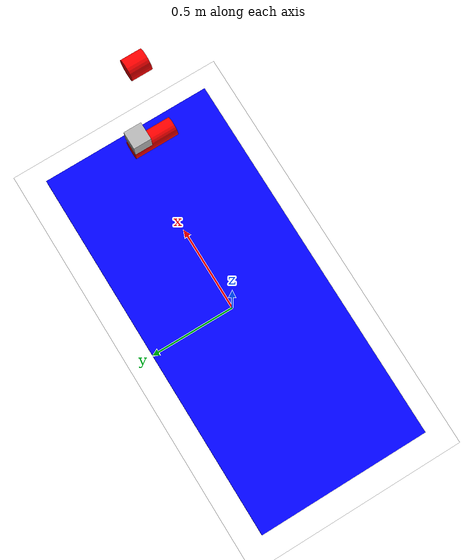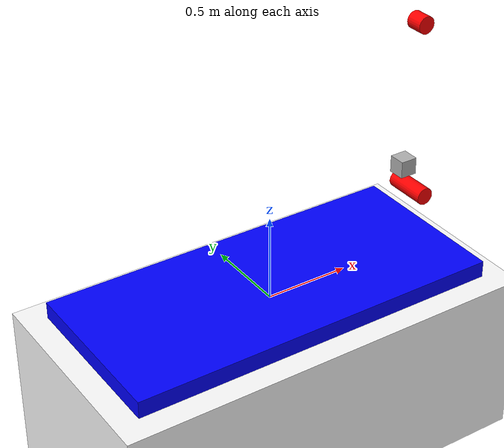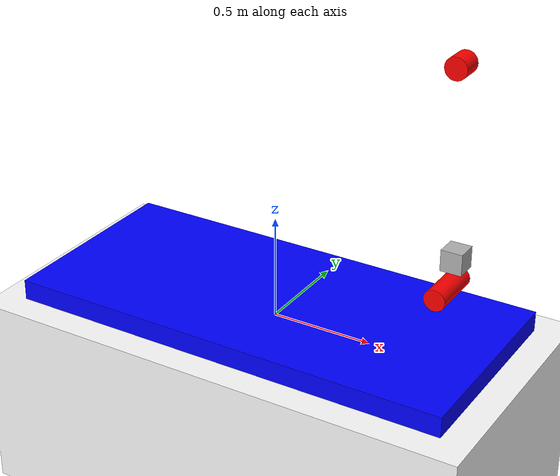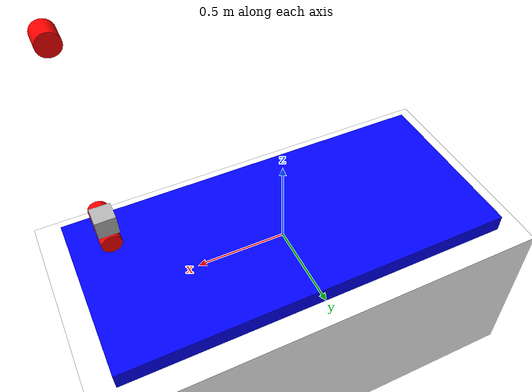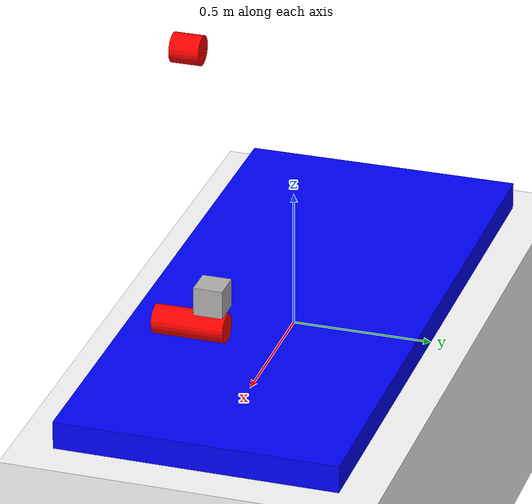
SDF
<?xml version="1.0" ?>
<sdf version="1.6">
  <world name="default">
    <physics name="fast" type="ignored">
      <real_time_factor>0</real_time_factor>
    </physics>

    <model name="ground_plane">
      <static>true</static>
      <link name="link">
        <pose>0 0 -0.5 0 0 0</pose>
        <collision name="collision">
          <geometry>
            <box>
              <size>100 100 1</size>
            </box>
          </geometry>
          <surface>
            <friction>
              <ode>
                <mu>100</mu>
                <mu2>50</mu2>
              </ode>
            </friction>
          </surface>
        </collision>
        <visual name="visual">
          <cast_shadows>false</cast_shadows>
          <geometry>
            <box>
              <size>100 100 1</size>
            </box>
          </geometry>
          <material>
            <ambient>1 1 1 1</ambient>
            <diffuse>1 1 1 1</diffuse>
            <specular>1 1 1 1</specular>
          </material>
        </visual>
      </link>
    </model>
    <model name="universal_model">
        <!-- A Heavy base keeps the joints from falling over -->
        <link name="heavy_base">
            <!-- position the base such that the bottom touches the floor -->
            <pose>0 0 0.05 0 0 0</pose>
            <inertial>
                <mass>100</mass> <!-- kg -->
                <inertia>
                    <!-- (mass / 12) * (y*y + z*z) -->
                    <ixx>8.4167</ixx>
                    <ixy>0</ixy>
                    <ixz>0</ixz>
                    <!-- (mass / 12) * (x*x + z*z) -->
                    <iyy>40.417</iyy>
                    <iyz>0</iyz>
                    <!-- (mass / 12) * (y*y + x*x) -->
                    <izz>48.667</izz>
                </inertia>
            </inertial>
            <!-- Same geometry as visual -->
            <collision name="heavy_base_collision">
                <geometry>
                    <box>
                        <size>2.2 1 0.1</size>
                    </box>
                </geometry>
            </collision>
            <!-- Same geometry as collision -->
            <visual name="heavy_base_visual">
                <geometry>
                    <box>
                        <size>2.2 1 0.1</size>
                    </box>
                </geometry>
                <material>
                  <ambient>0 0 1 1</ambient>
                  <diffuse>0 0 1 1</diffuse>
                  <specular>0 0 1 1</specular>
                </material>
            </visual>
        </link>

        <link name="universal_base">
            <!-- make the base float in the sky -->
            <pose >0.9 0 0.55 0 0 0</pose>
            <inertial>
                <inertia>
                    <!-- (mass / 12) * (y*y + z*z) -->
                    <ixx>0.0016667</ixx>
                    <ixy>0</ixy>
                    <ixz>0</ixz>
                    <!-- (mass / 12) * (x*x + z*z) -->
                    <iyy>0.0016667</iyy>
                    <iyz>0</iyz>
                    <!-- (mass / 12) * (y*y + x*x) -->
                    <izz>0.0016667</izz>
                </inertia>
            </inertial>
            <!-- Same geometry as visual -->
            <collision name="universal_base_collision">
                <geometry>
                    <box>
                        <size>0.1 0.1 0.1</size>
                    </box>
                </geometry>
            </collision>
            <!-- Same geometry as collision -->
            <visual name="universal_base_visual">
                <geometry>
                    <box>
                        <size>0.1 0.1 0.1</size>
                    </box>
                </geometry>
                <material>
                  <ambient>0.7 0.7 0.7 1</ambient>
                  <diffuse>0.7 0.7 0.7 1</diffuse>
                  <specular>0.7 0.7 0.7 1</specular>
                </material>
            </visual>
        </link>

        <joint name="universal_base_to_heavy_base" type="fixed">
            <parent>heavy_base</parent>
            <child>universal_base</child>
        </joint>

        <link name="universal_arm">
            <!-- Put the shaft just under the base -->
            <pose >0.9 -0.075 0.44 1.5708 0 0</pose>
            <inertial>
                <inertia>
                    <!-- (mass / 12) * (3 * radius * radius + length * length) -->
                    <ixx>0.0058333</ixx>
                    <ixy>0</ixy>
                    <ixz>0</ixz>
                    <!-- (mass / 12) * (3 * radius * radius + length * length) -->
                    <iyy>0.0058333</iyy>
                    <iyz>0</iyz>
                    <!-- mass * radius * radius * 0.5 -->
                    <izz>0.00125</izz>
                </inertia>
                <!-- offset interia as a trick to get movement from gravity -->
                <pose >-0.02 0.02 0 0 0 0</pose>
            </inertial>
            <!-- Same geometry as visual -->
            <collision name="universal_shaft_collision">
                <geometry>
                    <cylinder>
                        <radius>0.05</radius>
                        <length>0.25</length>
                    </cylinder>
                </geometry>
            </collision>
            <!-- Same geometry as collision -->
            <visual name="universal_shaft_visual">
                <geometry>
                    <cylinder>
                        <radius>0.05</radius>
                        <length>0.25</length>
                    </cylinder>
                </geometry>
                <material>
                  <ambient>1 0 0 1</ambient>
                  <diffuse>1 0 0 1</diffuse>
                  <specular>1 0 0 1</specular>
                </material>
            </visual>
        </link>

        <link name="universal_arm_2">
            <!-- Put the shaft just under the base -->
            <pose >0.9 -0.075 1.44 1.5708 0 0</pose>
            <inertial>
                <inertia>
                    <!-- (mass / 12) * (3 * radius * radius + length * length) -->
                    <ixx>0.0058333</ixx>
                    <ixy>0</ixy>
                    <ixz>0</ixz>
                    <!-- (mass / 12) * (3 * radius * radius + length * length) -->
                    <iyy>0.0058333</iyy>
                    <iyz>0</iyz>
                    <!-- mass * radius * radius * 0.5 -->
                    <izz>0.00125</izz>
                </inertia>
                <!-- offset interia as a trick to get movement from gravity -->
                <pose >-0.02 0.02 0 0 0 0</pose>
            </inertial>
            <!-- Same geometry as visual -->
            <collision name="universal_shaft_collision">
                <geometry>
                    <cylinder>
                        <radius>0.05</radius>
                        <length>0.1</length>
                    </cylinder>
                </geometry>
            </collision>
            <!-- Same geometry as collision -->
            <visual name="universal_shaft_visual">
                <geometry>
                    <cylinder>
                        <radius>0.05</radius>
                        <length>0.1</length>
                    </cylinder>
                </geometry>
                <material>
                  <ambient>1 0 0 1</ambient>
                  <diffuse>1 0 0 1</diffuse>
                  <specular>1 0 0 1</specular>
                </material>
            </visual>
        </link>

        <joint name="universal_joint_1" type="universal">
            <parent>universal_base</parent>
            <child>universal_arm</child>
            <pose>0 0 -0.075 0 0 0</pose>
            <axis>
              <xyz>1 0 0</xyz>
            </axis>
            <axis2>
              <xyz>0 1 0</xyz>
                <limit>
                  <lower>-1e16</lower>
                  <upper>1e16</upper>
                </limit>
            </axis2>
        </joint>
        <joint name="universal_joint_2" type="universal">
            <parent>universal_base</parent>
            <child>universal_arm_2</child>
            <pose>0 0 -0.075 0 0 0</pose>
            <axis>
              <xyz>1 0 0</xyz>
            </axis>
            <axis2>
              <xyz>0 1 0</xyz>
                <limit>
                  <lower>-1e16</lower>
                  <upper>1e16</upper>
                </limit>
            </axis2>
        </joint>

    </model>
  </world>
</sdf>
